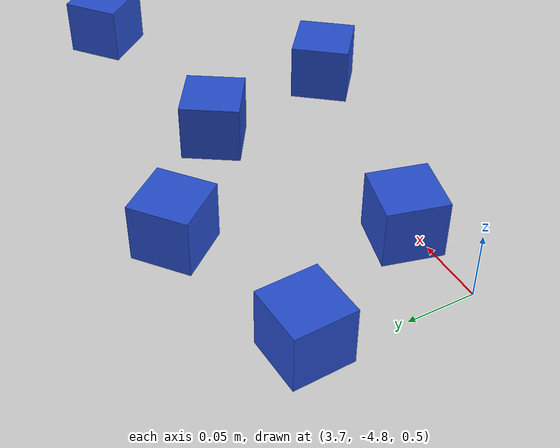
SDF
<sdf version="1.7">
 <world name="default">
  <model name="ground_plane">
   <static>1</static>
   <link name="link">
    <collision name="collision">
     <geometry><plane><normal>0 0 1</normal><size>100 100</size></plane></geometry>
     <surface><friction><ode><mu>100</mu><mu2>50</mu2></ode></friction></surface>
    </collision>
    <visual name="visual">
     <cast_shadows>0</cast_shadows>
     <geometry><plane><normal>0 0 1</normal><size>100 100</size></plane></geometry>
     <material>
      <script><uri>file://media/materials/scripts/gazebo.material</uri><name>Gazebo/Grey</name></script>
     </material>
    </visual>
   </link>
  </model>
  <gravity>0 0 -9.8</gravity>
  <magnetic_field>6e-06 2.3e-05 -4.2e-05</magnetic_field>
  <atmosphere type="adiabatic"/>
  <physics type="ode">
   <max_step_size>0.001</max_step_size>
   <real_time_factor>1</real_time_factor>
   <real_time_update_rate>1000</real_time_update_rate>
  </physics>
  <scene><ambient>0.4 0.4 0.4 1</ambient><background>0.7 0.7 0.7 1</background><shadows>1</shadows></scene>
  <audio><device>default</device></audio>
  <spherical_coordinates>
   <surface_model>EARTH_WGS84</surface_model>
   <latitude_deg>0</latitude_deg>
   <longitude_deg>0</longitude_deg>
   <elevation>0</elevation>
   <heading_deg>0</heading_deg>
  </spherical_coordinates>
  <light name="user_point_light_0" type="point">
   <pose>4.12688 2.66519 1 0 -0 0</pose>
   <diffuse>0.5 0.5 0.5 1</diffuse>
   <specular>0.1 0.1 0.1 1</specular>
   <attenuation>
    <range>20</range>
    <constant>0.5</constant>
    <linear>0.01</linear>
    <quadratic>0.001</quadratic>
   </attenuation>
   <cast_shadows>0</cast_shadows>
   <direction>0 0 -1</direction>
   <spot><inner_angle>0</inner_angle><outer_angle>0</outer_angle><falloff>0</falloff></spot>
  </light>
  <light name="user_point_light_1" type="point">
   <pose>-1.15613 2.44802 1 0 -0 0</pose>
   <diffuse>0.5 0.5 0.5 1</diffuse>
   <specular>0.1 0.1 0.1 1</specular>
   <attenuation>
    <range>20</range>
    <constant>0.5</constant>
    <linear>0.01</linear>
    <quadratic>0.001</quadratic>
   </attenuation>
   <cast_shadows>0</cast_shadows>
   <direction>0 0 -1</direction>
   <spot><inner_angle>0</inner_angle><outer_angle>0</outer_angle><falloff>0</falloff></spot>
  </light>
  <light name="user_point_light_2" type="point">
   <pose>-1.04603 -4.50201 1 0 -0 0</pose>
   <diffuse>0.5 0.5 0.5 1</diffuse>
   <specular>0.1 0.1 0.1 1</specular>
   <attenuation>
    <range>20</range>
    <constant>0.5</constant>
    <linear>0.01</linear>
    <quadratic>0.001</quadratic>
   </attenuation>
   <cast_shadows>0</cast_shadows>
   <direction>0 0 -1</direction>
   <spot><inner_angle>0</inner_angle><outer_angle>0</outer_angle><falloff>0</falloff></spot>
  </light>
  <light name="user_point_light_3" type="point">
   <pose>5.24252 -5.33418 1 0 -0 0</pose>
   <diffuse>0.5 0.5 0.5 1</diffuse>
   <specular>0.1 0.1 0.1 1</specular>
   <attenuation>
    <range>20</range>
    <constant>0.5</constant>
    <linear>0.01</linear>
    <quadratic>0.001</quadratic>
   </attenuation>
   <cast_shadows>0</cast_shadows>
   <direction>0 0 -1</direction>
   <spot><inner_angle>0</inner_angle><outer_angle>0</outer_angle><falloff>0</falloff></spot>
  </light>
  <light name="user_point_light_4" type="point">
   <pose>3.31748 -3.52049 1 0 -0 0</pose>
   <diffuse>0.5 0.5 0.5 1</diffuse>
   <specular>0.1 0.1 0.1 1</specular>
   <attenuation>
    <range>20</range>
    <constant>0.5</constant>
    <linear>0.01</linear>
    <quadratic>0.001</quadratic>
   </attenuation>
   <cast_shadows>0</cast_shadows>
   <direction>0 0 -1</direction>
   <spot><inner_angle>0</inner_angle><outer_angle>0</outer_angle><falloff>0</falloff></spot>
  </light>
  <model name="demo_cube">
   <static>0</static>
   <link name="link">
    <inertial>
     <mass>0.25</mass>
     <inertia><ixx>0.001</ixx><ixy>0</ixy><ixz>0</ixz><iyy>0.001</iyy><iyz>0</iyz><izz>0.001</izz></inertia>
    </inertial>
    <collision name="collision">
     <geometry><box><size>0.045 0.045 0.045</size></box></geometry>
     <surface>
      <friction><ode><mu>30</mu><mu2>30</mu2></ode></friction>
      <contact><ode><kp>1e+06</kp><kd>100</kd><max_vel>1</max_vel><min_depth>0.002</min_depth></ode></contact>
     </surface>
    </collision>
    <visual name="visual">
     <geometry><box><size>0.045 0.045 0.045</size></box></geometry>
     <material>
      <script><uri>file://media/materials/scripts/gazebo.material</uri><name>Gazebo/Blue</name></script>
     </material>
    </visual>
    <velocity_decay><linear>0</linear><angular>0</angular></velocity_decay>
   </link>
   <pose>3.76877 -4.79238 0.518975 -3e-06 -2e-06 -0.251318</pose>
  </model>
  <model name="demo_cube_red">
   <link name="link">
    <inertial>
     <mass>0.25</mass>
     <inertia><ixx>0.001</ixx><ixy>0</ixy><ixz>0</ixz><iyy>0.001</iyy><iyz>0</iyz><izz>0.001</izz></inertia>
    </inertial>
    <velocity_decay><linear>0</linear><angular>0</angular></velocity_decay>
    <visual name="visual">
     <geometry><box><size>0.045 0.045 0.045</size></box></geometry>
     <material>
      <script><uri>file://media/materials/scripts/gazebo.material</uri><name>Gazebo/Blue</name></script>
      <shader type="pixel"><normal_map>__default__</normal_map></shader>
      <ambient>1 0 0 0.6</ambient>
      <diffuse>0.6 0 0.2 1</diffuse>
      <specular>0.2 0.1 0.1 1</specular>
      <emissive>0 0 0 1</emissive>
     </material>
    </visual>
    <collision name="collision">
     <geometry><box><size>0.045 0.045 0.045</size></box></geometry>
     <surface>
      <friction>
       <ode><mu>30</mu><mu2>30</mu2><fdir1>0 0 0</fdir1><slip1>0</slip1><slip2>0</slip2></ode>
       <torsional>
        <coefficient>1</coefficient>
        <patch_radius>0</patch_radius>
        <surface_radius>0</surface_radius>
        <use_patch_radius>1</use_patch_radius>
        <ode><slip>0</slip></ode>
       </torsional>
      </friction>
      <bounce><restitution_coefficient>0</restitution_coefficient><threshold>1e+06</threshold></bounce>
      <contact>
       <collide_without_contact>0</collide_without_contact>
       <collide_without_contact_bitmask>1</collide_without_contact_bitmask>
       <collide_bitmask>1</collide_bitmask>
       <ode>
        <soft_cfm>0</soft_cfm>
        <soft_erp>0.2</soft_erp>
        <kp>1e+06</kp>
        <kd>100</kd>
        <max_vel>1</max_vel>
        <min_depth>0.002</min_depth>
       </ode>
       <bullet>
        <split_impulse>1</split_impulse>
        <split_impulse_penetration_threshold>-0.01</split_impulse_penetration_threshold>
        <soft_cfm>0</soft_cfm>
        <soft_erp>0.2</soft_erp>
        <kp>1e+06</kp>
        <kd>100</kd>
       </bullet>
      </contact>
     </surface>
    </collision>
   </link>
   <static>0</static>
   <pose>3.95957 -4.84185 0.518975 0.721737 1.57079 -1.52657</pose>
  </model>
  <model name="demo_cube_green">
   <link name="link">
    <inertial>
     <mass>0.25</mass>
     <inertia><ixx>0.001</ixx><ixy>0</ixy><ixz>0</ixz><iyy>0.001</iyy><iyz>0</iyz><izz>0.001</izz></inertia>
    </inertial>
    <velocity_decay><linear>0</linear><angular>0</angular></velocity_decay>
    <visual name="visual">
     <geometry><box><size>0.045 0.045 0.045</size></box></geometry>
     <material>
      <script><uri>file://media/materials/scripts/gazebo.material</uri><name>Gazebo/Blue</name></script>
      <shader type="pixel"><normal_map>__default__</normal_map></shader>
      <ambient>0 1 0 0.6</ambient>
      <diffuse>0.1 0.8 0.2 1</diffuse>
      <specular>0.2 0.1 0.1 1</specular>
      <emissive>0 0 0 1</emissive>
     </material>
    </visual>
    <collision name="collision">
     <geometry><box><size>0.045 0.045 0.045</size></box></geometry>
     <surface>
      <friction>
       <ode><mu>30</mu><mu2>30</mu2><fdir1>0 0 0</fdir1><slip1>0</slip1><slip2>0</slip2></ode>
       <torsional>
        <coefficient>1</coefficient>
        <patch_radius>0</patch_radius>
        <surface_radius>0</surface_radius>
        <use_patch_radius>1</use_patch_radius>
        <ode><slip>0</slip></ode>
       </torsional>
      </friction>
      <bounce><restitution_coefficient>0</restitution_coefficient><threshold>1e+06</threshold></bounce>
      <contact>
       <collide_without_contact>0</collide_without_contact>
       <collide_without_contact_bitmask>1</collide_without_contact_bitmask>
       <collide_bitmask>1</collide_bitmask>
       <ode>
        <soft_cfm>0</soft_cfm>
        <soft_erp>0.2</soft_erp>
        <kp>1e+06</kp>
        <kd>100</kd>
        <max_vel>1</max_vel>
        <min_depth>0.002</min_depth>
       </ode>
       <bullet>
        <split_impulse>1</split_impulse>
        <split_impulse_penetration_threshold>-0.01</split_impulse_penetration_threshold>
        <soft_cfm>0</soft_cfm>
        <soft_erp>0.2</soft_erp>
        <kp>1e+06</kp>
        <kd>100</kd>
       </bullet>
      </contact>
     </surface>
    </collision>
   </link>
   <static>0</static>
   <pose>3.71276 -4.68218 0.518975 -1.5708 -1e-06 1.61764</pose>
  </model>
  <model name="demo_cube_green_clone">
   <link name="link">
    <inertial>
     <mass>0.25</mass>
     <inertia><ixx>0.001</ixx><ixy>0</ixy><ixz>0</ixz><iyy>0.001</iyy><iyz>0</iyz><izz>0.001</izz></inertia>
    </inertial>
    <velocity_decay><linear>0</linear><angular>0</angular></velocity_decay>
    <visual name="visual">
     <geometry><box><size>0.045 0.045 0.045</size></box></geometry>
     <material>
      <script><uri>file://media/materials/scripts/gazebo.material</uri><name>Gazebo/Blue</name></script>
      <shader type="pixel"><normal_map>__default__</normal_map></shader>
      <ambient>0 1 0 0.6</ambient>
      <diffuse>0.1 0.8 0.2 1</diffuse>
      <specular>0.2 0.1 0.1 1</specular>
      <emissive>0 0 0 1</emissive>
     </material>
    </visual>
    <collision name="collision">
     <geometry><box><size>0.045 0.045 0.045</size></box></geometry>
     <surface>
      <friction>
       <ode><mu>30</mu><mu2>30</mu2><fdir1>0 0 0</fdir1><slip1>0</slip1><slip2>0</slip2></ode>
       <torsional>
        <coefficient>1</coefficient>
        <patch_radius>0</patch_radius>
        <surface_radius>0</surface_radius>
        <use_patch_radius>1</use_patch_radius>
        <ode><slip>0</slip></ode>
       </torsional>
      </friction>
      <bounce><restitution_coefficient>0</restitution_coefficient><threshold>1e+06</threshold></bounce>
      <contact>
       <collide_without_contact>0</collide_without_contact>
       <collide_without_contact_bitmask>1</collide_without_contact_bitmask>
       <collide_bitmask>1</collide_bitmask>
       <ode>
        <soft_cfm>0</soft_cfm>
        <soft_erp>0.2</soft_erp>
        <kp>1e+06</kp>
        <kd>100</kd>
        <max_vel>1</max_vel>
        <min_depth>0.002</min_depth>
       </ode>
       <bullet>
        <split_impulse>1</split_impulse>
        <split_impulse_penetration_threshold>-0.01</split_impulse_penetration_threshold>
        <soft_cfm>0</soft_cfm>
        <soft_erp>0.2</soft_erp>
        <kp>1e+06</kp>
        <kd>100</kd>
       </bullet>
      </contact>
     </surface>
    </collision>
   </link>
   <static>0</static>
   <pose>4.10615 -4.7094 0.518975 -2.5356 1.57078 1.28509</pose>
  </model>
  <model name="demo_cube_red_clone_clone">
   <link name="link">
    <inertial>
     <mass>0.25</mass>
     <inertia><ixx>0.001</ixx><ixy>0</ixy><ixz>0</ixz><iyy>0.001</iyy><iyz>0</iyz><izz>0.001</izz></inertia>
    </inertial>
    <velocity_decay><linear>0</linear><angular>0</angular></velocity_decay>
    <visual name="visual">
     <geometry><box><size>0.045 0.045 0.045</size></box></geometry>
     <material>
      <script><uri>file://media/materials/scripts/gazebo.material</uri><name>Gazebo/Blue</name></script>
      <shader type="pixel"><normal_map>__default__</normal_map></shader>
      <ambient>1 0 0 0.6</ambient>
      <diffuse>0.6 0 0.2 1</diffuse>
      <specular>0.2 0.1 0.1 1</specular>
      <emissive>0 0 0 1</emissive>
     </material>
    </visual>
    <collision name="collision">
     <geometry><box><size>0.045 0.045 0.045</size></box></geometry>
     <surface>
      <friction>
       <ode><mu>30</mu><mu2>30</mu2><fdir1>0 0 0</fdir1><slip1>0</slip1><slip2>0</slip2></ode>
       <torsional>
        <coefficient>1</coefficient>
        <patch_radius>0</patch_radius>
        <surface_radius>0</surface_radius>
        <use_patch_radius>1</use_patch_radius>
        <ode><slip>0</slip></ode>
       </torsional>
      </friction>
      <bounce><restitution_coefficient>0</restitution_coefficient><threshold>1e+06</threshold></bounce>
      <contact>
       <collide_without_contact>0</collide_without_contact>
       <collide_without_contact_bitmask>1</collide_without_contact_bitmask>
       <collide_bitmask>1</collide_bitmask>
       <ode>
        <soft_cfm>0</soft_cfm>
        <soft_erp>0.2</soft_erp>
        <kp>1e+06</kp>
        <kd>100</kd>
        <max_vel>1</max_vel>
        <min_depth>0.002</min_depth>
       </ode>
       <bullet>
        <split_impulse>1</split_impulse>
        <split_impulse_penetration_threshold>-0.01</split_impulse_penetration_threshold>
        <soft_cfm>0</soft_cfm>
        <soft_erp>0.2</soft_erp>
        <kp>1e+06</kp>
        <kd>100</kd>
       </bullet>
      </contact>
     </surface>
    </collision>
   </link>
   <static>0</static>
   <pose>3.83716 -4.65248 0.518975 -2.02016 1.57079 1.79758</pose>
  </model>
  <model name="demo_cube_clone_clone">
   <static>0</static>
   <link name="link">
    <inertial>
     <mass>0.25</mass>
     <inertia><ixx>0.001</ixx><ixy>0</ixy><ixz>0</ixz><iyy>0.001</iyy><iyz>0</iyz><izz>0.001</izz></inertia>
    </inertial>
    <collision name="collision">
     <geometry><box><size>0.045 0.045 0.045</size></box></geometry>
     <surface>
      <friction><ode><mu>30</mu><mu2>30</mu2></ode></friction>
      <contact><ode><kp>1e+06</kp><kd>100</kd><max_vel>1</max_vel><min_depth>0.002</min_depth></ode></contact>
     </surface>
    </collision>
    <visual name="visual">
     <geometry><box><size>0.045 0.045 0.045</size></box></geometry>
     <material>
      <script><uri>file://media/materials/scripts/gazebo.material</uri><name>Gazebo/Blue</name></script>
     </material>
    </visual>
    <velocity_decay><linear>0</linear><angular>0</angular></velocity_decay>
   </link>
   <pose>3.93063 -4.72779 0.518975 1.57079 -0 0.991056</pose>
  </model>
  <light name="user_directional_light_1" type="directional">
   <pose>-0.497357 -4.06237 1 0 -0 0</pose>
   <diffuse>0.5 0.5 0.5 1</diffuse>
   <specular>0.1 0.1 0.1 1</specular>
   <direction>0.1 0.1 -0.9</direction>
   <attenuation>
    <range>20</range>
    <constant>0.5</constant>
    <linear>0.01</linear>
    <quadratic>0.001</quadratic>
   </attenuation>
   <spot><inner_angle>0</inner_angle><outer_angle>0</outer_angle><falloff>0</falloff></spot>
  </light>
  <light name="user_directional_light_2" type="directional">
   <pose>4.48915 -0.959073 1 0 -0 0</pose>
   <diffuse>0.5 0.5 0.5 1</diffuse>
   <specular>0.1 0.1 0.1 1</specular>
   <direction>0.1 0.1 -0.9</direction>
   <attenuation>
    <range>20</range>
    <constant>0.5</constant>
    <linear>0.01</linear>
    <quadratic>0.001</quadratic>
   </attenuation>
   <spot><inner_angle>0</inner_angle><outer_angle>0</outer_angle><falloff>0</falloff></spot>
  </light>
  <model name="unit_box_inv">
   <link name="link">
    <inertial>
     <mass>1</mass>
     <inertia>
      <ixx>0.166667</ixx>
      <ixy>0</ixy>
      <ixz>0</ixz>
      <iyy>0.166667</iyy>
      <iyz>0</iyz>
      <izz>0.166667</izz>
     </inertia>
    </inertial>
    <visual name="visual">
     <geometry><box><size>0 0 0</size></box></geometry>
     <material>
      <script><name>Gazebo/Grey</name><uri>file://media/materials/scripts/gazebo.material</uri></script>
      <shader type="pixel"><normal_map>__default__</normal_map></shader>
      <ambient>0.3 0.3 0.3 1</ambient>
      <diffuse>0.7 0.7 0.7 1</diffuse>
      <specular>0.01 0.01 0.01 1</specular>
      <emissive>0 0 0 1</emissive>
     </material>
    </visual>
    <collision name="collision">
     <geometry><box><size>1 4.59209 1</size></box></geometry>
     <surface>
      <friction>
       <ode><mu>1</mu><mu2>1</mu2><fdir1>0 0 0</fdir1><slip1>0</slip1><slip2>0</slip2></ode>
       <torsional>
        <coefficient>1</coefficient>
        <patch_radius>0</patch_radius>
        <surface_radius>0</surface_radius>
        <use_patch_radius>1</use_patch_radius>
        <ode><slip>0</slip></ode>
       </torsional>
      </friction>
      <bounce><restitution_coefficient>0</restitution_coefficient><threshold>1e+06</threshold></bounce>
      <contact>
       <collide_without_contact>0</collide_without_contact>
       <collide_without_contact_bitmask>1</collide_without_contact_bitmask>
       <collide_bitmask>1</collide_bitmask>
       <ode>
        <soft_cfm>0</soft_cfm>
        <soft_erp>0.2</soft_erp>
        <kp>1e+13</kp>
        <kd>1</kd>
        <max_vel>0.01</max_vel>
        <min_depth>0</min_depth>
       </ode>
       <bullet>
        <split_impulse>1</split_impulse>
        <split_impulse_penetration_threshold>-0.01</split_impulse_penetration_threshold>
        <soft_cfm>0</soft_cfm>
        <soft_erp>0.2</soft_erp>
        <kp>1e+13</kp>
        <kd>1</kd>
       </bullet>
      </contact>
     </surface>
    </collision>
   </link>
   <static>0</static>
   <pose>2.93233 1.97597 0.498567 -0.000624 -0 4e-06</pose>
  </model>
  <model name="unit_box_inv_clone">
   <link name="link">
    <inertial>
     <mass>1</mass>
     <inertia>
      <ixx>0.166667</ixx>
      <ixy>0</ixy>
      <ixz>0</ixz>
      <iyy>0.166667</iyy>
      <iyz>0</iyz>
      <izz>0.166667</izz>
     </inertia>
    </inertial>
    <visual name="visual">
     <geometry><box><size>0 0 0</size></box></geometry>
     <material>
      <script><name>Gazebo/Grey</name><uri>file://media/materials/scripts/gazebo.material</uri></script>
      <shader type="pixel"><normal_map>__default__</normal_map></shader>
      <ambient>0.3 0.3 0.3 1</ambient>
      <diffuse>0.7 0.7 0.7 1</diffuse>
      <specular>0.01 0.01 0.01 1</specular>
      <emissive>0 0 0 1</emissive>
     </material>
    </visual>
    <collision name="collision">
     <geometry><box><size>1 4.59209 1</size></box></geometry>
     <surface>
      <friction>
       <ode><mu>1</mu><mu2>1</mu2><fdir1>0 0 0</fdir1><slip1>0</slip1><slip2>0</slip2></ode>
       <torsional>
        <coefficient>1</coefficient>
        <patch_radius>0</patch_radius>
        <surface_radius>0</surface_radius>
        <use_patch_radius>1</use_patch_radius>
        <ode><slip>0</slip></ode>
       </torsional>
      </friction>
      <bounce><restitution_coefficient>0</restitution_coefficient><threshold>1e+06</threshold></bounce>
      <contact>
       <collide_without_contact>0</collide_without_contact>
       <collide_without_contact_bitmask>1</collide_without_contact_bitmask>
       <collide_bitmask>1</collide_bitmask>
       <ode>
        <soft_cfm>0</soft_cfm>
        <soft_erp>0.2</soft_erp>
        <kp>1e+13</kp>
        <kd>1</kd>
        <max_vel>0.01</max_vel>
        <min_depth>0</min_depth>
       </ode>
       <bullet>
        <split_impulse>1</split_impulse>
        <split_impulse_penetration_threshold>-0.01</split_impulse_penetration_threshold>
        <soft_cfm>0</soft_cfm>
        <soft_erp>0.2</soft_erp>
        <kp>1e+13</kp>
        <kd>1</kd>
       </bullet>
      </contact>
     </surface>
    </collision>
   </link>
   <static>0</static>
   <pose>5.10961 1.94726 0.498567 -0.000624 -0 -4e-06</pose>
  </model>
  <model name="unit_box_inv_clone_0">
   <link name="link">
    <inertial>
     <mass>1</mass>
     <inertia>
      <ixx>0.166667</ixx>
      <ixy>0</ixy>
      <ixz>0</ixz>
      <iyy>0.166667</iyy>
      <iyz>0</iyz>
      <izz>0.166667</izz>
     </inertia>
    </inertial>
    <visual name="visual">
     <geometry><box><size>0 0 0</size></box></geometry>
     <material>
      <script><name>Gazebo/Grey</name><uri>file://media/materials/scripts/gazebo.material</uri></script>
      <shader type="pixel"><normal_map>__default__</normal_map></shader>
      <ambient>0.3 0.3 0.3 1</ambient>
      <diffuse>0.7 0.7 0.7 1</diffuse>
      <specular>0.01 0.01 0.01 1</specular>
      <emissive>0 0 0 1</emissive>
     </material>
    </visual>
    <collision name="collision">
     <geometry><box><size>1 4.59209 1</size></box></geometry>
     <surface>
      <friction>
       <ode><mu>1</mu><mu2>1</mu2><fdir1>0 0 0</fdir1><slip1>0</slip1><slip2>0</slip2></ode>
       <torsional>
        <coefficient>1</coefficient>
        <patch_radius>0</patch_radius>
        <surface_radius>0</surface_radius>
        <use_patch_radius>1</use_patch_radius>
        <ode><slip>0</slip></ode>
       </torsional>
      </friction>
      <bounce><restitution_coefficient>0</restitution_coefficient><threshold>1e+06</threshold></bounce>
      <contact>
       <collide_without_contact>0</collide_without_contact>
       <collide_without_contact_bitmask>1</collide_without_contact_bitmask>
       <collide_bitmask>1</collide_bitmask>
       <ode>
        <soft_cfm>0</soft_cfm>
        <soft_erp>0.2</soft_erp>
        <kp>1e+13</kp>
        <kd>1</kd>
        <max_vel>0.01</max_vel>
        <min_depth>0</min_depth>
       </ode>
       <bullet>
        <split_impulse>1</split_impulse>
        <split_impulse_penetration_threshold>-0.01</split_impulse_penetration_threshold>
        <soft_cfm>0</soft_cfm>
        <soft_erp>0.2</soft_erp>
        <kp>1e+13</kp>
        <kd>1</kd>
       </bullet>
      </contact>
     </surface>
    </collision>
   </link>
   <static>0</static>
   <pose>2.29357 6.27707 0.498567 0.000624 0 1.5708</pose>
  </model>
 </world>
</sdf>
